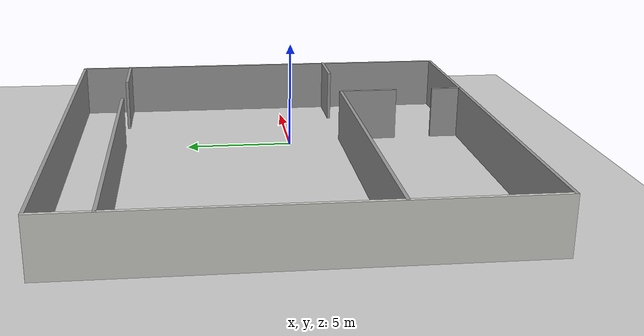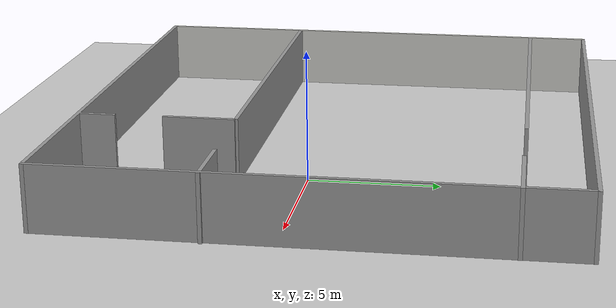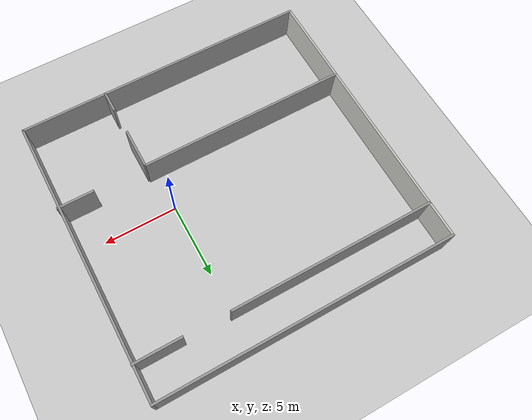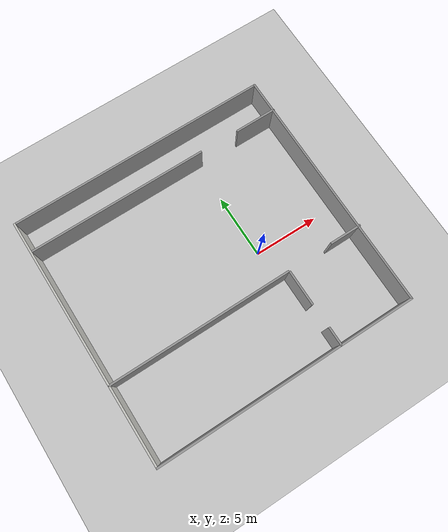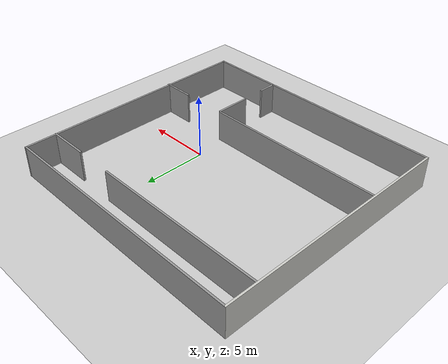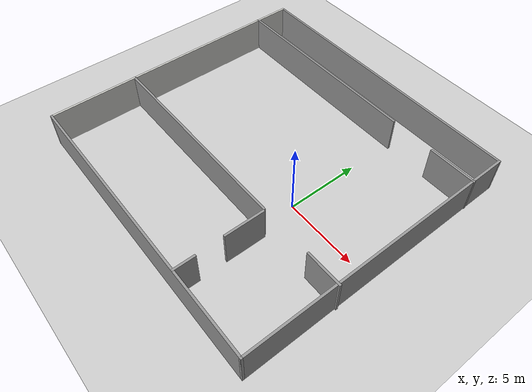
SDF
<sdf version="1.6">
 <world name="default">
  <model name="ground_plane">
   <static>1</static>
   <link name="link">
    <collision name="collision">
     <geometry><plane><normal>0 0 1</normal><size>100 100</size></plane></geometry>
     <surface><friction><ode><mu>100</mu><mu2>50</mu2></ode></friction></surface>
    </collision>
    <visual name="visual">
     <cast_shadows>0</cast_shadows>
     <geometry><plane><normal>0 0 1</normal><size>100 100</size></plane></geometry>
     <material>
      <script><uri>file://media/materials/scripts/gazebo.material</uri><name>Gazebo/Grey</name></script>
     </material>
    </visual>
   </link>
  </model>
  <light name="sun" type="directional">
   <pose>0 0 10 0 -0 0</pose>
   <diffuse>0.8 0.8 0.8 1</diffuse>
   <specular>0.2 0.2 0.2 1</specular>
   <attenuation>
    <range>1000</range>
    <constant>0.9</constant>
    <linear>0.01</linear>
    <quadratic>0.001</quadratic>
   </attenuation>
   <direction>-0.5 0.1 -0.9</direction>
  </light>
  <gravity>0 0 -9.8</gravity>
  <magnetic_field>6e-06 2.3e-05 -4.2e-05</magnetic_field>
  <atmosphere type="adiabatic"/>
  <physics name="default_physics" default="0" type="ode">
   <max_step_size>0.001</max_step_size>
   <real_time_factor>1</real_time_factor>
   <real_time_update_rate>1000</real_time_update_rate>
  </physics>
  <scene><ambient>0.4 0.4 0.4 1</ambient><background>0.7 0.7 0.7 1</background><shadows>1</shadows></scene>
  <spherical_coordinates>
   <surface_model>EARTH_WGS84</surface_model>
   <latitude_deg>0</latitude_deg>
   <longitude_deg>0</longitude_deg>
   <elevation>0</elevation>
   <heading_deg>0</heading_deg>
  </spherical_coordinates>
  <model name="myroom">
   <pose>-3.55053 0.9375 0 0 -0 0</pose>
   <link name="Wall_11">
    <collision name="Wall_11_Collision">
     <geometry><box><size>14 0.15 2.5</size></box></geometry>
     <pose>0 0 1.25 0 -0 0</pose>
    </collision>
    <visual name="Wall_11_Visual">
     <pose>0 0 1.25 0 -0 0</pose>
     <geometry><box><size>14 0.15 2.5</size></box></geometry>
     <material>
      <script><uri>file://media/materials/scripts/gazebo.material</uri><name>Gazebo/Grey</name></script>
      <ambient>1 1 1 1</ambient>
     </material>
     <meta><layer>0</layer></meta>
    </visual>
    <pose>-3.17045 7.16312 0 0 -0 0</pose>
   </link>
   <link name="Wall_14">
    <collision name="Wall_14_Collision">
     <geometry><box><size>3.25 0.15 2.5</size></box></geometry>
     <pose>0 0 1.25 0 -0 0</pose>
    </collision>
    <visual name="Wall_14_Visual">
     <pose>0 0 1.25 0 -0 0</pose>
     <geometry><box><size>3.25 0.15 2.5</size></box></geometry>
     <material>
      <script><uri>file://media/materials/scripts/gazebo.material</uri><name>Gazebo/Grey</name></script>
      <ambient>1 1 1 1</ambient>
     </material>
     <meta><layer>0</layer></meta>
    </visual>
    <pose>8.48634 7.12266 0 0 -0 0</pose>
   </link>
   <link name="Wall_18">
    <collision name="Wall_18_Collision">
     <geometry><box><size>14.25 0.15 2.5</size></box></geometry>
     <pose>0 0 1.25 0 -0 0</pose>
    </collision>
    <visual name="Wall_18_Visual">
     <pose>0 0 1.25 0 -0 0</pose>
     <geometry><box><size>14.25 0.15 2.5</size></box></geometry>
     <material>
      <script><uri>file://media/materials/scripts/gazebo.material</uri><name>Gazebo/Grey</name></script>
      <ambient>1 1 1 1</ambient>
     </material>
     <meta><layer>0</layer></meta>
    </visual>
    <pose>-3.005 -3.51715 0 0 -0 0</pose>
   </link>
   <link name="Wall_21">
    <collision name="Wall_21_Collision">
     <geometry><box><size>2.5 0.15 2.5</size></box></geometry>
     <pose>0 0 1.25 0 -0 0</pose>
    </collision>
    <visual name="Wall_21_Visual">
     <pose>0 0 1.25 0 -0 0</pose>
     <geometry><box><size>2.5 0.15 2.5</size></box></geometry>
     <material>
      <script><uri>file://media/materials/scripts/gazebo.material</uri><name>Gazebo/Grey</name></script>
      <ambient>1 1 1 1</ambient>
     </material>
     <meta><layer>0</layer></meta>
    </visual>
    <pose>8.92046 -3.4767 0 0 -0 0</pose>
   </link>
   <link name="Wall_23">
    <collision name="Wall_23_Collision">
     <geometry><box><size>1.5 0.15 2.5</size></box></geometry>
     <pose>0 0 1.25 0 -0 0</pose>
    </collision>
    <visual name="Wall_23_Visual">
     <pose>0 0 1.25 0 -0 0</pose>
     <geometry><box><size>1.5 0.15 2.5</size></box></geometry>
     <material>
      <script><uri>file://media/materials/scripts/gazebo.material</uri><name>Gazebo/Grey</name></script>
      <ambient>1 1 1 1</ambient>
     </material>
     <meta><layer>0</layer></meta>
    </visual>
    <pose>4.18537 -8.87003 0 0 -0 1.5708</pose>
   </link>
   <link name="Wall_26">
    <collision name="Wall_26_Collision">
     <geometry><box><size>2.75 0.15 2.5</size></box></geometry>
     <pose>0 0 1.25 0 -0 0</pose>
    </collision>
    <visual name="Wall_26_Visual">
     <pose>0 0 1.25 0 -0 0</pose>
     <geometry><box><size>2.75 0.15 2.5</size></box></geometry>
     <material>
      <script><uri>file://media/materials/scripts/gazebo.material</uri><name>Gazebo/Grey</name></script>
      <ambient>1 1 1 1</ambient>
     </material>
     <meta><layer>0</layer></meta>
    </visual>
    <pose>4.14491 -4.92767 0 0 -0 1.5708</pose>
   </link>
   <link name="Wall_5">
    <collision name="Wall_5_Collision">
     <geometry><box><size>19.25 0.15 2.5</size></box></geometry>
     <pose>0 0 1.25 0 -0 0</pose>
    </collision>
    <visual name="Wall_5_Visual">
     <pose>0 0 1.25 0 -0 0</pose>
     <geometry><box><size>19.25 0.15 2.5</size></box></geometry>
     <material>
      <script><uri>file://media/materials/scripts/gazebo.material</uri><name>Gazebo/CeilingTiled</name></script>
      <ambient>1 1 1 1</ambient>
     </material>
     <meta><layer>0</layer></meta>
    </visual>
    <pose>-10.0955 0 0 0 0 -1.5708</pose>
   </link>
   <link name="Wall_7">
    <collision name="Wall_7_Collision">
     <geometry><box><size>20.25 0.15 2.5</size></box></geometry>
     <pose>0 0 1.25 0 -0 0</pose>
    </collision>
    <visual name="Wall_7_Visual">
     <pose>0 0 1.25 0 -0 0</pose>
     <geometry><box><size>20.25 0.15 2.5</size></box></geometry>
     <material>
      <script><uri>file://media/materials/scripts/gazebo.material</uri><name>Gazebo/Grey</name></script>
      <ambient>1 1 1 1</ambient>
     </material>
     <meta><layer>0</layer></meta>
    </visual>
    <pose>-0.045454 -9.55 0 0 -0 0</pose>
   </link>
   <link name="Wall_8">
    <collision name="Wall_8_Collision">
     <geometry><box><size>19.25 0.15 2.5</size></box></geometry>
     <pose>0 0 1.25 0 -0 0</pose>
    </collision>
    <visual name="Wall_8_Visual">
     <pose>0 0 1.25 0 -0 0</pose>
     <geometry><box><size>19.25 0.15 2.5</size></box></geometry>
     <material>
      <script><uri>file://media/materials/scripts/gazebo.material</uri><name>Gazebo/Grey</name></script>
      <ambient>1 1 1 1</ambient>
     </material>
     <meta><layer>0</layer></meta>
    </visual>
    <pose>10.0045 0 0 0 -0 1.5708</pose>
   </link>
   <link name="Wall_9">
    <collision name="Wall_9_Collision">
     <geometry><box><size>20.25 0.15 2.5</size></box></geometry>
     <pose>0 0 1.25 0 -0 0</pose>
    </collision>
    <visual name="Wall_9_Visual">
     <pose>0 0 1.25 0 -0 0</pose>
     <geometry><box><size>20.25 0.15 2.5</size></box></geometry>
     <material>
      <script><uri>file://media/materials/scripts/gazebo.material</uri><name>Gazebo/Grey</name></script>
      <ambient>1 1 1 1</ambient>
     </material>
     <meta><layer>0</layer></meta>
    </visual>
    <pose>-0.045454 9.55 0 0 -0 3.14159</pose>
   </link>
   <static>1</static>
  </model>
 </world>
</sdf>
